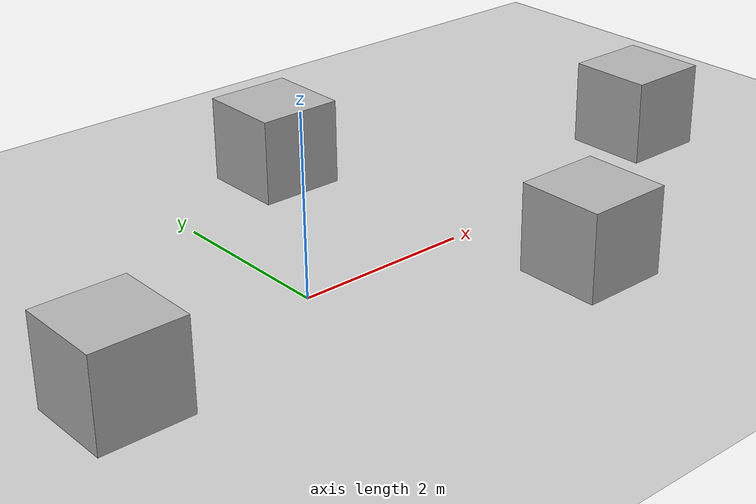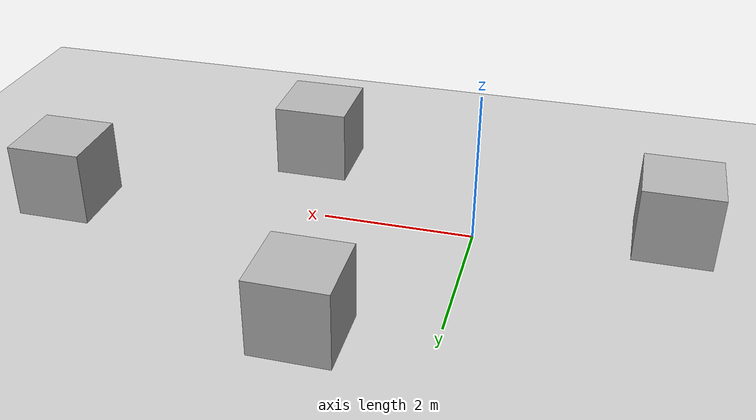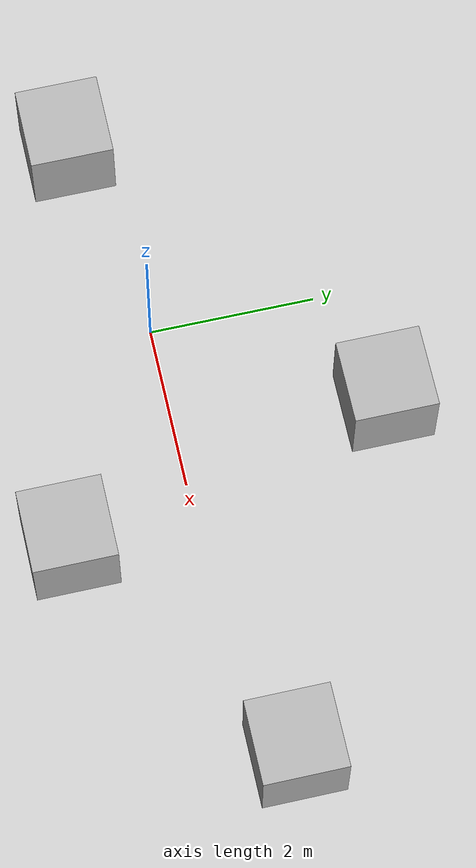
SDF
<?xml version="1.0" ?>
<sdf version="1.5">
  <world name="void">

    <physics name="1ms" type="ignored">
      <max_step_size>0.001</max_step_size>
      <real_time_factor>1.0</real_time_factor>
    </physics>

    <plugin name='gz::sim::systems::Physics' filename='gz-sim-physics-system' />
    <plugin name='gz::sim::systems::UserCommands' filename='gz-sim-user-commands-system' />
    <plugin name='gz::sim::systems::SceneBroadcaster' filename='gz-sim-scene-broadcaster-system' />
    <plugin name='gz::sim::systems::Contact' filename='gz-sim-contact-system' />

    <model name="ground_plane">
      <static>true</static>
      <link name="link">
        <collision name="collision">
          <geometry>
            <plane>
              <normal>0 0 1</normal>
              <size>100 100</size>
            </plane>
          </geometry>
          <surface>
            <friction>
              <ode>
                <mu>100</mu>
                <mu2>50</mu2>
              </ode>
            </friction>
          </surface>
        </collision>
        <visual name="ground_visual">
          <geometry>
            <plane>
              <normal>0 0 1</normal>
              <size>100 100</size>
            </plane>
          </geometry>
          <material>
            <ambient>0.6 0.6 0.6 1</ambient>
            <diffuse>0.8 0.8 0.8 1</diffuse>
            <specular>0.1 0.1 0.1 1</specular>
            <emissive>0 0 0 1</emissive>
          </material>
          <cast_shadows>false</cast_shadows>
        </visual>
      </link>
    </model>

    <model name='box'>
      <pose>2.5112389845798884 -1.4985927694366397 0.49999999990199806 6.2287739151293738e-22 9.3279666454713669e-22 -3.6315533669320137e-22</pose>
      <link name='box_link'>
        <inertial>
          <inertia>
            <ixx>0.16666</ixx>
            <ixy>0</ixy>
            <ixz>0</ixz>
            <iyy>0.16666</iyy>
            <iyz>0</iyz>
            <izz>0.16666</izz>
          </inertia>
          <mass>1</mass>
          <pose>0 0 0 0 0 0</pose>
        </inertial>
        <collision name='box_collision'>
          <geometry>
            <box>
              <size>1 1 1</size>
            </box>
          </geometry>
          <surface>
            <friction>
              <ode/>
            </friction>
            <bounce/>
            <contact/>
          </surface>
        </collision>
        <visual name='box_visual'>
          <geometry>
            <box>
              <size>1 1 1</size>
            </box>
          </geometry>
          <material>
            <ambient>0.300000012 0.300000012 0.300000012 1</ambient>
            <diffuse>0.699999988 0.699999988 0.699999988 1</diffuse>
            <specular>1 1 1 1</specular>
          </material>
        </visual>
        <pose>0 0 0 0 0 0</pose>
        <enable_wind>false</enable_wind>
      </link>
      <static>false</static>
      <self_collide>false</self_collide>
    </model>
    <model name='box_0'>
      <pose>5.5015488983267762 0.49842838741151452 0.49999999990199806 6.2287739151293738e-22 9.3279666454713669e-22 -3.6315533669320137e-22</pose>
      <link name='box_link'>
        <inertial>
          <inertia>
            <ixx>0.16666</ixx>
            <ixy>0</ixy>
            <ixz>0</ixz>
            <iyy>0.16666</iyy>
            <iyz>0</iyz>
            <izz>0.16666</izz>
          </inertia>
          <mass>1</mass>
          <pose>0 0 0 0 0 0</pose>
        </inertial>
        <collision name='box_collision'>
          <geometry>
            <box>
              <size>1 1 1</size>
            </box>
          </geometry>
          <surface>
            <friction>
              <ode/>
            </friction>
            <bounce/>
            <contact/>
          </surface>
        </collision>
        <visual name='box_visual'>
          <geometry>
            <box>
              <size>1 1 1</size>
            </box>
          </geometry>
          <material>
            <ambient>0.300000012 0.300000012 0.300000012 1</ambient>
            <diffuse>0.699999988 0.699999988 0.699999988 1</diffuse>
            <specular>1 1 1 1</specular>
          </material>
        </visual>
        <pose>0 0 0 0 0 0</pose>
        <enable_wind>false</enable_wind>
      </link>
      <static>false</static>
      <self_collide>false</self_collide>
    </model>
    <model name='box_1'>
      <pose>1.5173388533261845 2.5076099496848014 0.49999999990199806 6.2287739151293738e-22 9.3279666454713669e-22 -3.6315533669320137e-22</pose>
      <link name='box_link'>
        <inertial>
          <inertia>
            <ixx>0.16666</ixx>
            <ixy>0</ixy>
            <ixz>0</ixz>
            <iyy>0.16666</iyy>
            <iyz>0</iyz>
            <izz>0.16666</izz>
          </inertia>
          <mass>1</mass>
          <pose>0 0 0 0 0 0</pose>
        </inertial>
        <collision name='box_collision'>
          <geometry>
            <box>
              <size>1 1 1</size>
            </box>
          </geometry>
          <surface>
            <friction>
              <ode/>
            </friction>
            <bounce/>
            <contact/>
          </surface>
        </collision>
        <visual name='box_visual'>
          <geometry>
            <box>
              <size>1 1 1</size>
            </box>
          </geometry>
          <material>
            <ambient>0.300000012 0.300000012 0.300000012 1</ambient>
            <diffuse>0.699999988 0.699999988 0.699999988 1</diffuse>
            <specular>1 1 1 1</specular>
          </material>
        </visual>
        <pose>0 0 0 0 0 0</pose>
        <enable_wind>false</enable_wind>
      </link>
      <static>false</static>
      <self_collide>false</self_collide>
    </model>
    <model name='box_2'>
      <pose>-2.5065505031124045 -0.50347889005561086 0.49999999990199806 6.2287739151293738e-22 9.3279666454713669e-22 -3.6315533669320137e-22</pose>
      <link name='box_link'>
        <inertial>
          <inertia>
            <ixx>0.16666</ixx>
            <ixy>0</ixy>
            <ixz>0</ixz>
            <iyy>0.16666</iyy>
            <iyz>0</iyz>
            <izz>0.16666</izz>
          </inertia>
          <mass>1</mass>
          <pose>0 0 0 0 0 0</pose>
        </inertial>
        <collision name='box_collision'>
          <geometry>
            <box>
              <size>1 1 1</size>
            </box>
          </geometry>
          <surface>
            <friction>
              <ode/>
            </friction>
            <bounce/>
            <contact/>
          </surface>
        </collision>
        <visual name='box_visual'>
          <geometry>
            <box>
              <size>1 1 1</size>
            </box>
          </geometry>
          <material>
            <ambient>0.300000012 0.300000012 0.300000012 1</ambient>
            <diffuse>0.699999988 0.699999988 0.699999988 1</diffuse>
            <specular>1 1 1 1</specular>
          </material>
        </visual>
        <pose>0 0 0 0 0 0</pose>
        <enable_wind>false</enable_wind>
      </link>
      <static>false</static>
      <self_collide>false</self_collide>
    </model>

    <include>
      <uri>https://fuel.gazebosim.org/1.0/OpenRobotics/models/Sun</uri>
    </include>

  </world>
</sdf>
